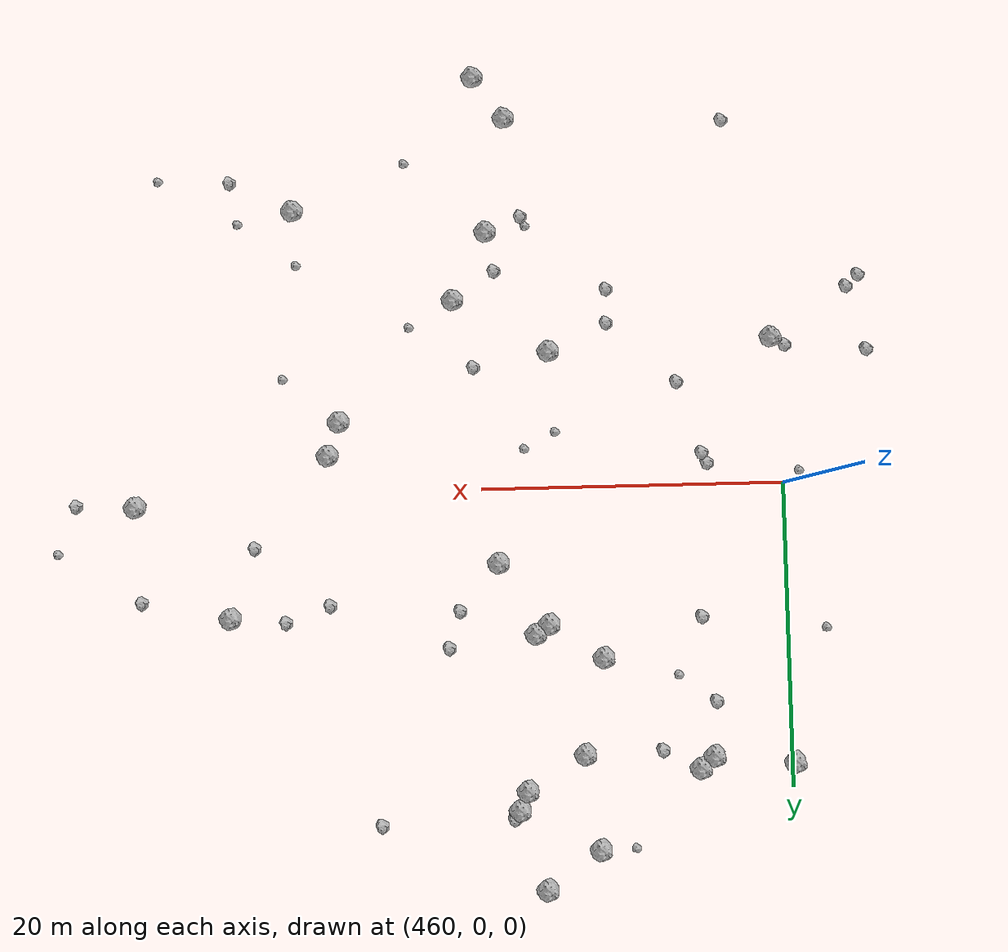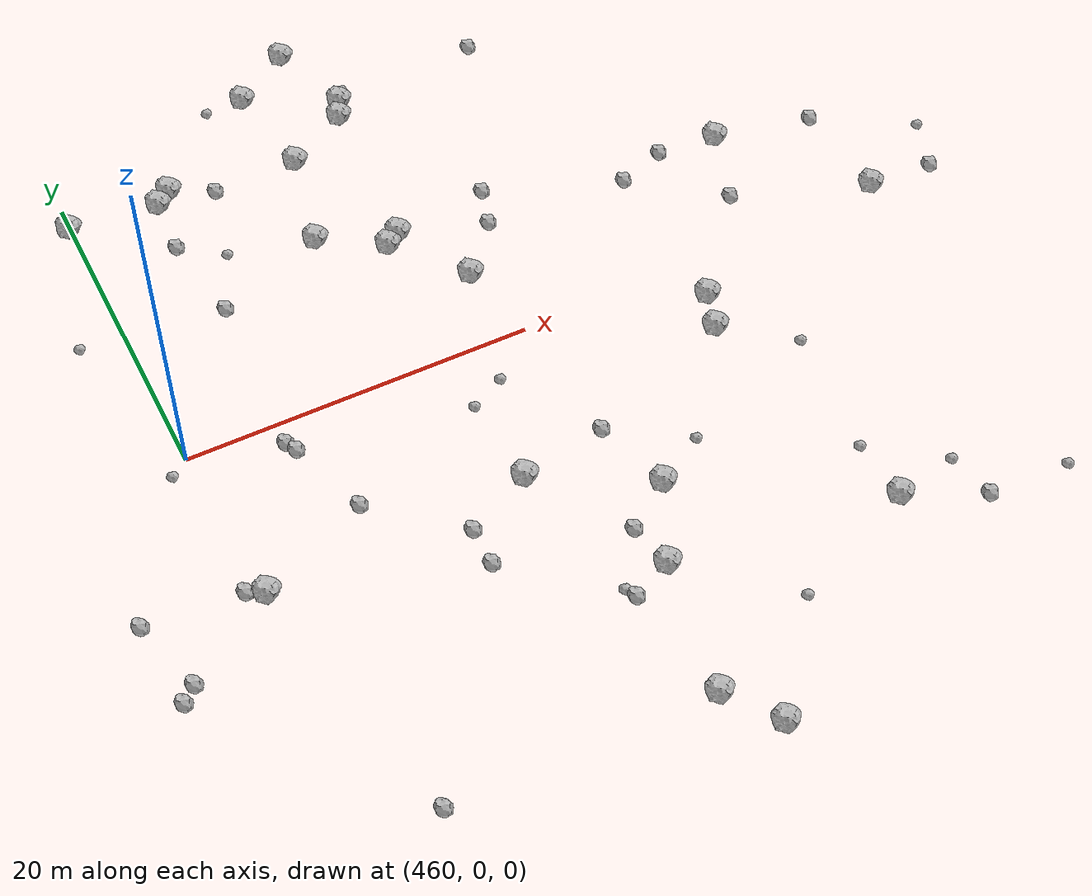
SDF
<sdf version="1.6">
 <world name="default">
  <include><uri>model://sun</uri></include>
  <model name="rock1_12_4">
   <include><uri>model://rock1</uri><pose>473.6593339414062 17.528217930129415 0.5 0 0 0</pose></include>
  </model>
  <model name="rock1_12_5">
   <include><uri>model://rock1</uri><pose>472.80026152383346 23.714256182726352 0.5 0 0 0</pose></include>
  </model>
  <model name="rock1_12_6">
   <include><uri>model://rock1</uri><pose>502.9739369883961 0.7539768257385475 0.5 0 0 0</pose></include>
  </model>
  <model name="rock1_12_7">
   <include><uri>model://rock1</uri><pose>479.45918795496704 -17.17624968575035 0.5 0 0 0</pose></include>
  </model>
  <model name="rock1_12_8">
   <include><uri>model://rock1</uri><pose>478.06513299989217 -24.861309971984067 0.5 0 0 0</pose></include>
  </model>
  <model name="rock1_12_9">
   <include><uri>model://rock1</uri><pose>472.27770408579914 11.250980226498854 0.5 0 0 0</pose></include>
  </model>
  <model name="rock1_12_10">
   <include><uri>model://rock1</uri><pose>481.73438635527214 -12.62735523131316 0.5 0 0 0</pose></include>
  </model>
  <model name="rock1_12_11">
   <include><uri>model://rock1</uri><pose>475.4567671921491 -9.072803918187766 0.5 0 0 0</pose></include>
  </model>
  <model name="rock1_12_12">
   <include><uri>model://rock1</uri><pose>479.0596446238094 4.912849824281992 0.5 0 0 0</pose></include>
  </model>
  <model name="rock1_12_13">
   <include><uri>model://rock1</uri><pose>490.2201302857683 -2.396952810654259 0.5 0 0 0</pose></include>
  </model>
  <model name="rock1_12_14">
   <include><uri>model://rock1</uri><pose>476.7094839321023 9.618750993225092 0.5 0 0 0</pose></include>
  </model>
  <model name="rock1_12_15">
   <include><uri>model://rock1</uri><pose>477.4660007303642 19.830727891601967 0.5 0 0 0</pose></include>
  </model>
  <model name="rock1_12_16">
   <include><uri>model://rock1</uri><pose>478.0118241749462 21.069601227392 0.5 0 0 0</pose></include>
  </model>
  <model name="rock1_12_17">
   <include><uri>model://rock1</uri><pose>460.6761756128669 -9.746664534041855 0.5 0 0 0</pose></include>
  </model>
  <model name="rock1_12_18">
   <include><uri>model://rock1</uri><pose>480.100794741063 -27.678119749335277 0.5 0 0 0</pose></include>
  </model>
  <model name="rock1_12_19">
   <include><uri>model://rock1</uri><pose>466.13483655407714 18.571778674164932 0.5 0 0 0</pose></include>
  </model>
  <model name="rock1_12_20">
   <include><uri>model://rock1</uri><pose>476.33526874493566 26.21093985727498 0.5 0 0 0</pose></include>
  </model>
  <model name="rock1_12_21">
   <include><uri>model://rock1</uri><pose>492.3279559538598 -18.838484594987243 0.5 0 0 0</pose></include>
  </model>
  <model name="rock1_12_22">
   <include><uri>model://rock1</uri><pose>496.7658304032508 8.211138468661524 0.5 0 0 0</pose></include>
  </model>
  <model name="rock1_12_23">
   <include><uri>model://rock1</uri><pose>459.95955660673866 18.29538021066506 0.5 0 0 0</pose></include>
  </model>
  <model name="rock1_12_24">
   <include><uri>model://rock1</uri><pose>465.2087734232598 17.794217609184955 0.5 0 0 0</pose></include>
  </model>
  <model name="rock1_12_25">
   <include><uri>model://rock1</uri><pose>489.4548684949098 -4.628413269006785 0.5 0 0 0</pose></include>
  </model>
  <model name="rock1_12_26">
   <include><uri>model://rock1</uri><pose>475.8106552224611 8.991491156171506 0.5 0 0 0</pose></include>
  </model>
  <model name="rock2_12_0">
   <include><uri>model://rock2</uri><pose>468.5223177575035 17.403402602910475 0.3 0 0 0</pose></include>
  </model>
  <model name="rock2_12_1">
   <include><uri>model://rock2</uri><pose>459.68195159837865 -9.205696437938425 0.3 0 0 0</pose></include>
  </model>
  <model name="rock2_12_2">
   <include><uri>model://rock2</uri><pose>506.88124792184345 0.6174125642132324 0.3 0 0 0</pose></include>
  </model>
  <model name="rock2_12_3">
   <include><uri>model://rock2</uri><pose>465.71536556167615 8.726154714761925 0.3 0 0 0</pose></include>
  </model>
  <model name="rock2_12_4">
   <include><uri>model://rock2</uri><pose>465.4216733912541 -2.102229971971809 0.3 0 0 0</pose></include>
  </model>
  <model name="rock2_12_5">
   <include><uri>model://rock2</uri><pose>465.09525657045845 -1.4280079195828002 0.3 0 0 0</pose></include>
  </model>
  <model name="rock2_12_6">
   <include><uri>model://rock2</uri><pose>464.9170076151419 14.28340538642194 0.3 0 0 0</pose></include>
  </model>
  <model name="rock2_12_7">
   <include><uri>model://rock2</uri><pose>493.109450127435 8.584373499335108 0.3 0 0 0</pose></include>
  </model>
  <model name="rock2_12_8">
   <include><uri>model://rock2</uri><pose>478.34784630729604 21.659559509779122 0.3 0 0 0</pose></include>
  </model>
  <model name="rock2_12_9">
   <include><uri>model://rock2</uri><pose>502.5882932408223 7.091432559432256 0.3 0 0 0</pose></include>
  </model>
  <model name="rock2_12_10">
   <include><uri>model://rock2</uri><pose>477.07643321668655 -18.193686226827136 0.3 0 0 0</pose></include>
  </model>
  <model name="rock2_12_11">
   <include><uri>model://rock2</uri><pose>466.95380396055805 -6.859867809415604 0.3 0 0 0</pose></include>
  </model>
  <model name="rock2_12_12">
   <include><uri>model://rock2</uri><pose>454.6376909661018 -13.8140729810589 0.3 0 0 0</pose></include>
  </model>
  <model name="rock2_12_13">
   <include><uri>model://rock2</uri><pose>495.1124121979411 3.6485523540790368 0.3 0 0 0</pose></include>
  </model>
  <model name="rock2_12_14">
   <include><uri>model://rock2</uri><pose>481.633964745254 8.047676282236594 0.3 0 0 0</pose></include>
  </model>
  <model name="rock2_12_15">
   <include><uri>model://rock2</uri><pose>478.9229407301461 -14.537531526800198 0.3 0 0 0</pose></include>
  </model>
  <model name="rock2_12_16">
   <include><uri>model://rock2</uri><pose>471.52568376864065 -10.896283826546306 0.3 0 0 0</pose></include>
  </model>
  <model name="rock2_12_17">
   <include><uri>model://rock2</uri><pose>496.492679120252 -20.853945238454063 0.3 0 0 0</pose></include>
  </model>
  <model name="rock2_12_18">
   <include><uri>model://rock2</uri><pose>463.44052426378994 -24.477516169494294 0.3 0 0 0</pose></include>
  </model>
  <model name="rock2_12_19">
   <include><uri>model://rock2</uri><pose>454.2507621292351 -8.801839141317917 0.3 0 0 0</pose></include>
  </model>
  <model name="rock2_12_20">
   <include><uri>model://rock2</uri><pose>471.4745941598104 -13.174330505423406 0.3 0 0 0</pose></include>
  </model>
  <model name="rock2_12_21">
   <include><uri>model://rock2</uri><pose>487.00426672378404 21.93250877630333 0.3 0 0 0</pose></include>
  </model>
  <model name="rock2_12_22">
   <include><uri>model://rock2</uri><pose>455.4560419369887 -13.048864903481956 0.3 0 0 0</pose></include>
  </model>
  <model name="rock2_12_23">
   <include><uri>model://rock2</uri><pose>477.60839586615765 20.065523147385846 0.3 0 0 0</pose></include>
  </model>
  <model name="rock2_12_24">
   <include><uri>model://rock2</uri><pose>482.3844812324513 10.465058965645376 0.3 0 0 0</pose></include>
  </model>
  <model name="rock2_12_25">
   <include><uri>model://rock2</uri><pose>480.4351827651882 -8.094185531635254 0.3 0 0 0</pose></include>
  </model>
  <model name="rock2_12_26">
   <include><uri>model://rock2</uri><pose>490.17930749011384 7.523389791932445 0.3 0 0 0</pose></include>
  </model>
  <model name="rock3_12_0">
   <include><uri>model://rock3</uri><pose>484.6553739828312 -10.901855289272952 0.2 0 0 0</pose></include>
  </model>
  <model name="rock3_12_1">
   <include><uri>model://rock3</uri><pose>470.4237126299881 23.6745287995829 0.2 0 0 0</pose></include>
  </model>
  <model name="rock3_12_2">
   <include><uri>model://rock3</uri><pose>476.76202039444314 -17.611742153952292 0.2 0 0 0</pose></include>
  </model>
  <model name="rock3_12_3">
   <include><uri>model://rock3</uri><pose>492.11973251102705 -15.23963709777236 0.2 0 0 0</pose></include>
  </model>
  <model name="rock3_12_4">
   <include><uri>model://rock3</uri><pose>475.0828097915683 -3.7329203058122786 0.2 0 0 0</pose></include>
  </model>
  <model name="rock3_12_5">
   <include><uri>model://rock3</uri><pose>508.08941824822836 3.7288672676117542 0.2 0 0 0</pose></include>
  </model>
  <model name="rock3_12_6">
   <include><uri>model://rock3</uri><pose>467.3236420171244 12.46316436848398 0.2 0 0 0</pose></include>
  </model>
  <model name="rock3_12_7">
   <include><uri>model://rock3</uri><pose>501.26358329384004 -21.11379780595569 0.2 0 0 0</pose></include>
  </model>
  <model name="rock3_12_8">
   <include><uri>model://rock3</uri><pose>493.10782138133993 -7.598376253519511 0.2 0 0 0</pose></include>
  </model>
  <model name="rock3_12_9">
   <include><uri>model://rock3</uri><pose>484.7811762133363 -22.004244029011353 0.2 0 0 0</pose></include>
  </model>
  <model name="rock3_12_10">
   <include><uri>model://rock3</uri><pose>457.49567174039385 9.54801074341264 0.2 0 0 0</pose></include>
  </model>
  <model name="rock3_12_11">
   <include><uri>model://rock3</uri><pose>477.15059955048224 -2.646321726541249 0.2 0 0 0</pose></include>
  </model>
  <model name="rock3_12_12">
   <include><uri>model://rock3</uri><pose>458.96459435635325 -0.8521535492751084 0.2 0 0 0</pose></include>
  </model>
  <model name="rock3_12_13">
   <include><uri>model://rock3</uri><pose>495.97666514863806 -18.10915485588607 0.2 0 0 0</pose></include>
  </model>
 </world>
</sdf>
